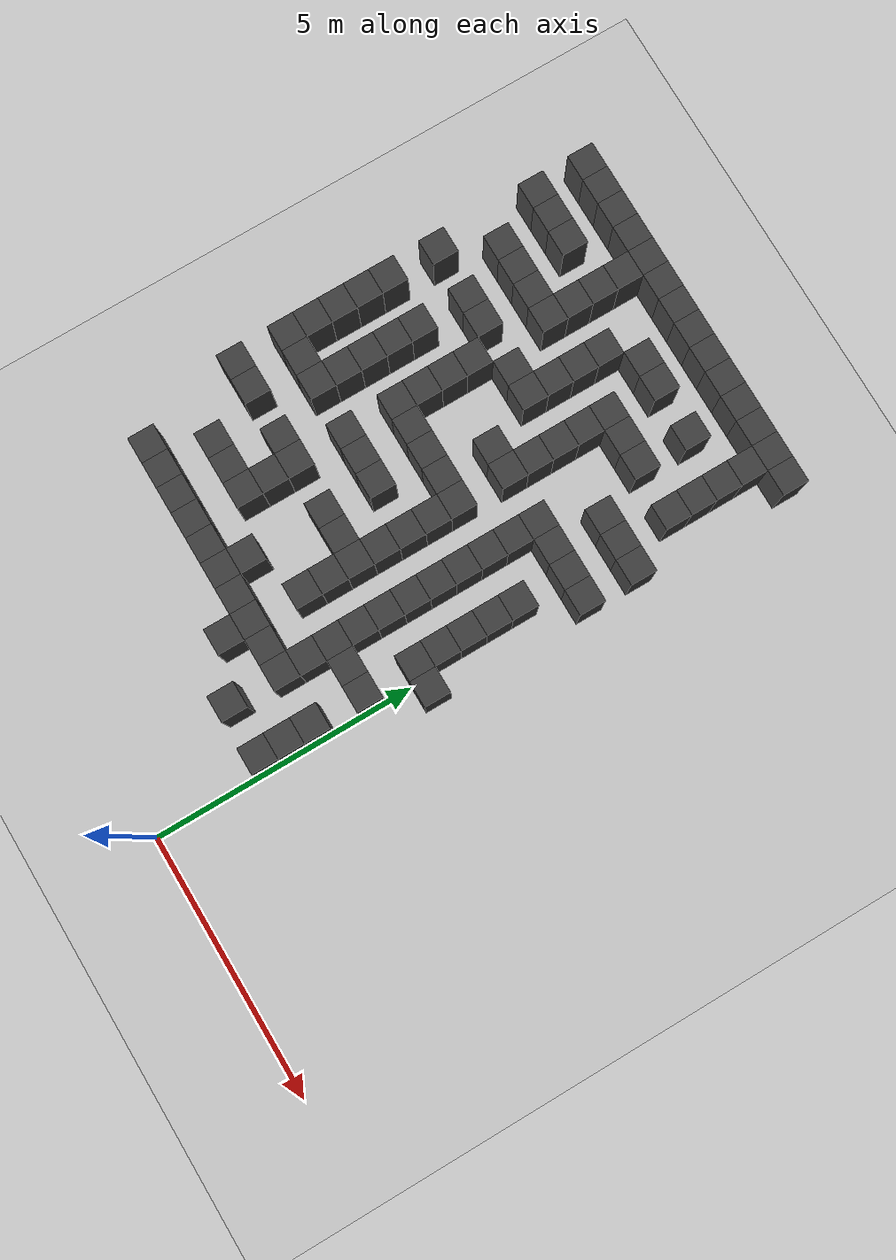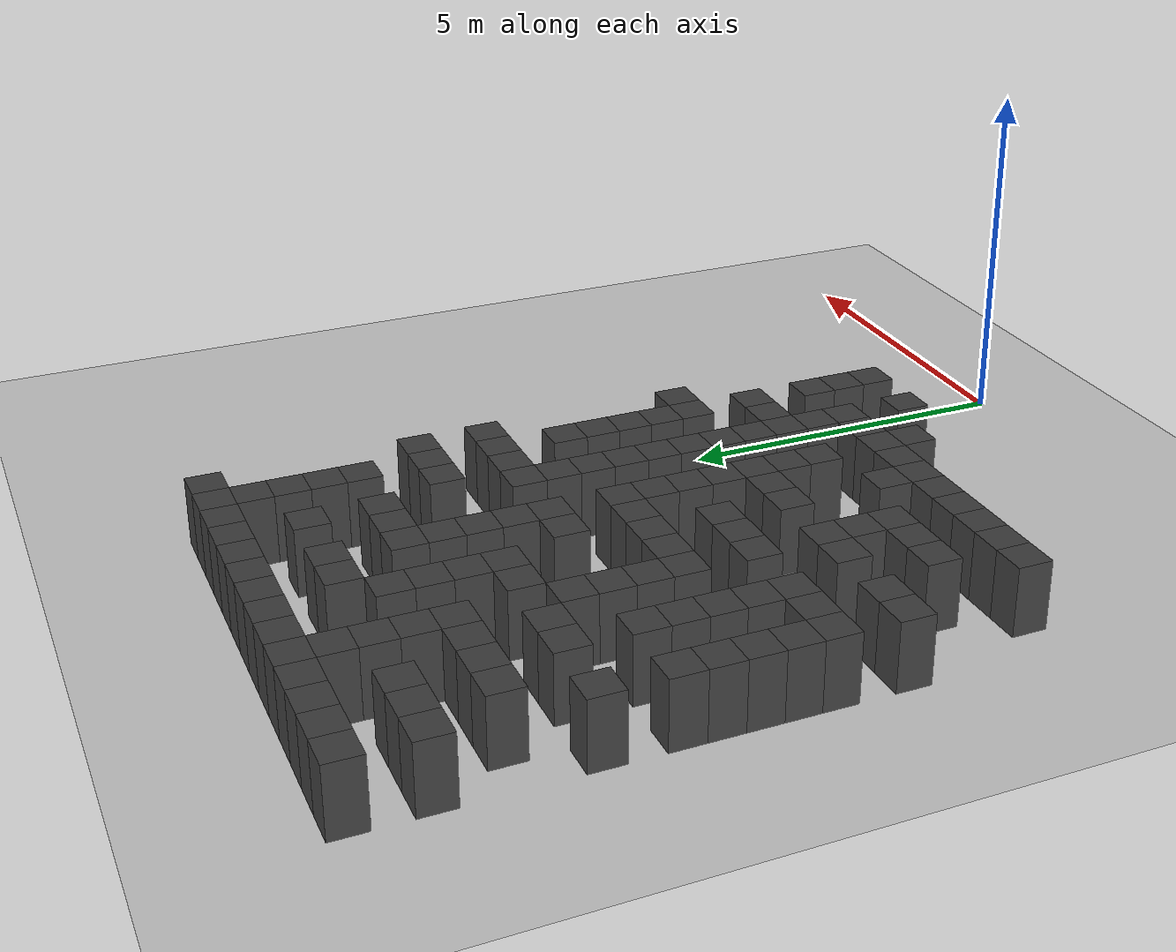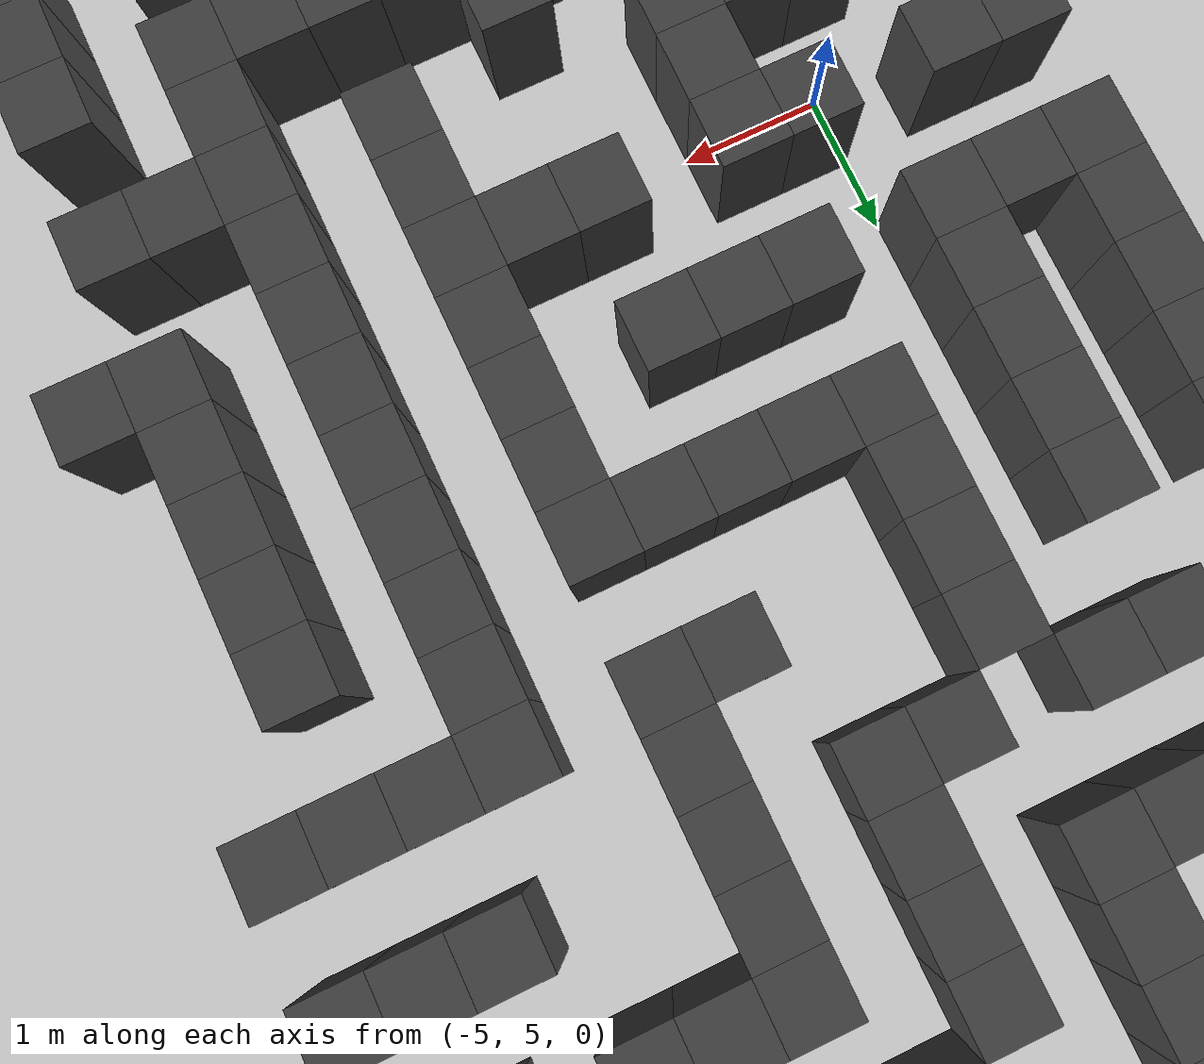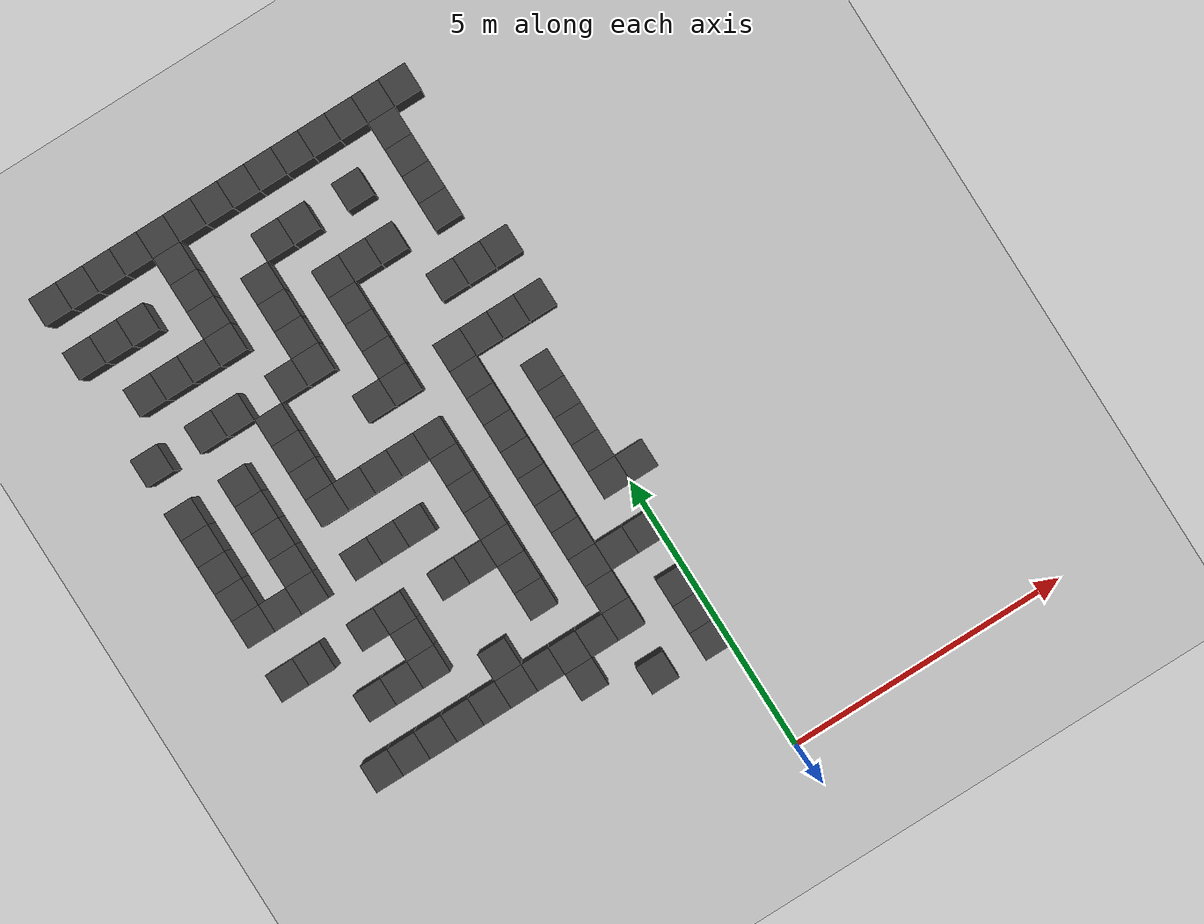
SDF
<sdf version="1.7">
 <world name="map_16783">
  <model name="ground_plane">
   <static>true</static>
   <link name="link">
    <collision name="collision">
     <geometry><plane><normal>0 0 1</normal><size>200 200</size></plane></geometry>
    </collision>
    <visual name="visual">
     <geometry><plane><normal>0 0 1</normal><size>200 200</size></plane></geometry>
     <material><ambient>0.8 0.8 0.8 1</ambient><diffuse>0.8 0.8 0.8 1</diffuse></material>
    </visual>
   </link>
  </model>
  <model name="maze_environment">
   <static>true</static>
   <link name="wall_12">
    <pose>-6.250 12.250 0.500 0 0 0</pose>
    <collision name="col"><geometry><box><size>0.5 0.5 1.0</size></box></geometry></collision>
    <visual name="vis">
     <geometry><box><size>0.5 0.5 1.0</size></box></geometry>
     <material><ambient>0.15 0.15 0.15 1</ambient><diffuse>0.25 0.25 0.25 1</diffuse></material>
    </visual>
   </link>
   <link name="wall_13">
    <pose>-5.750 12.250 0.500 0 0 0</pose>
    <collision name="col"><geometry><box><size>0.5 0.5 1.0</size></box></geometry></collision>
    <visual name="vis">
     <geometry><box><size>0.5 0.5 1.0</size></box></geometry>
     <material><ambient>0.15 0.15 0.15 1</ambient><diffuse>0.25 0.25 0.25 1</diffuse></material>
    </visual>
   </link>
   <link name="wall_14">
    <pose>-5.250 12.250 0.500 0 0 0</pose>
    <collision name="col"><geometry><box><size>0.5 0.5 1.0</size></box></geometry></collision>
    <visual name="vis">
     <geometry><box><size>0.5 0.5 1.0</size></box></geometry>
     <material><ambient>0.15 0.15 0.15 1</ambient><diffuse>0.25 0.25 0.25 1</diffuse></material>
    </visual>
   </link>
   <link name="wall_15">
    <pose>-4.750 12.250 0.500 0 0 0</pose>
    <collision name="col"><geometry><box><size>0.5 0.5 1.0</size></box></geometry></collision>
    <visual name="vis">
     <geometry><box><size>0.5 0.5 1.0</size></box></geometry>
     <material><ambient>0.15 0.15 0.15 1</ambient><diffuse>0.25 0.25 0.25 1</diffuse></material>
    </visual>
   </link>
   <link name="wall_16">
    <pose>-4.250 12.250 0.500 0 0 0</pose>
    <collision name="col"><geometry><box><size>0.5 0.5 1.0</size></box></geometry></collision>
    <visual name="vis">
     <geometry><box><size>0.5 0.5 1.0</size></box></geometry>
     <material><ambient>0.15 0.15 0.15 1</ambient><diffuse>0.25 0.25 0.25 1</diffuse></material>
    </visual>
   </link>
   <link name="wall_17">
    <pose>-3.750 12.250 0.500 0 0 0</pose>
    <collision name="col"><geometry><box><size>0.5 0.5 1.0</size></box></geometry></collision>
    <visual name="vis">
     <geometry><box><size>0.5 0.5 1.0</size></box></geometry>
     <material><ambient>0.15 0.15 0.15 1</ambient><diffuse>0.25 0.25 0.25 1</diffuse></material>
    </visual>
   </link>
   <link name="wall_18">
    <pose>-3.250 12.250 0.500 0 0 0</pose>
    <collision name="col"><geometry><box><size>0.5 0.5 1.0</size></box></geometry></collision>
    <visual name="vis">
     <geometry><box><size>0.5 0.5 1.0</size></box></geometry>
     <material><ambient>0.15 0.15 0.15 1</ambient><diffuse>0.25 0.25 0.25 1</diffuse></material>
    </visual>
   </link>
   <link name="wall_19">
    <pose>-2.750 12.250 0.500 0 0 0</pose>
    <collision name="col"><geometry><box><size>0.5 0.5 1.0</size></box></geometry></collision>
    <visual name="vis">
     <geometry><box><size>0.5 0.5 1.0</size></box></geometry>
     <material><ambient>0.15 0.15 0.15 1</ambient><diffuse>0.25 0.25 0.25 1</diffuse></material>
    </visual>
   </link>
   <link name="wall_20">
    <pose>-2.250 12.250 0.500 0 0 0</pose>
    <collision name="col"><geometry><box><size>0.5 0.5 1.0</size></box></geometry></collision>
    <visual name="vis">
     <geometry><box><size>0.5 0.5 1.0</size></box></geometry>
     <material><ambient>0.15 0.15 0.15 1</ambient><diffuse>0.25 0.25 0.25 1</diffuse></material>
    </visual>
   </link>
   <link name="wall_21">
    <pose>-1.750 12.250 0.500 0 0 0</pose>
    <collision name="col"><geometry><box><size>0.5 0.5 1.0</size></box></geometry></collision>
    <visual name="vis">
     <geometry><box><size>0.5 0.5 1.0</size></box></geometry>
     <material><ambient>0.15 0.15 0.15 1</ambient><diffuse>0.25 0.25 0.25 1</diffuse></material>
    </visual>
   </link>
   <link name="wall_22">
    <pose>-1.250 12.250 0.500 0 0 0</pose>
    <collision name="col"><geometry><box><size>0.5 0.5 1.0</size></box></geometry></collision>
    <visual name="vis">
     <geometry><box><size>0.5 0.5 1.0</size></box></geometry>
     <material><ambient>0.15 0.15 0.15 1</ambient><diffuse>0.25 0.25 0.25 1</diffuse></material>
    </visual>
   </link>
   <link name="wall_23">
    <pose>-0.750 12.250 0.500 0 0 0</pose>
    <collision name="col"><geometry><box><size>0.5 0.5 1.0</size></box></geometry></collision>
    <visual name="vis">
     <geometry><box><size>0.5 0.5 1.0</size></box></geometry>
     <material><ambient>0.15 0.15 0.15 1</ambient><diffuse>0.25 0.25 0.25 1</diffuse></material>
    </visual>
   </link>
   <link name="wall_24">
    <pose>-0.250 12.250 0.500 0 0 0</pose>
    <collision name="col"><geometry><box><size>0.5 0.5 1.0</size></box></geometry></collision>
    <visual name="vis">
     <geometry><box><size>0.5 0.5 1.0</size></box></geometry>
     <material><ambient>0.15 0.15 0.15 1</ambient><diffuse>0.25 0.25 0.25 1</diffuse></material>
    </visual>
   </link>
   <link name="wall_25">
    <pose>0.250 12.250 0.500 0 0 0</pose>
    <collision name="col"><geometry><box><size>0.5 0.5 1.0</size></box></geometry></collision>
    <visual name="vis">
     <geometry><box><size>0.5 0.5 1.0</size></box></geometry>
     <material><ambient>0.15 0.15 0.15 1</ambient><diffuse>0.25 0.25 0.25 1</diffuse></material>
    </visual>
   </link>
   <link name="wall_53">
    <pose>-4.250 11.750 0.500 0 0 0</pose>
    <collision name="col"><geometry><box><size>0.5 0.5 1.0</size></box></geometry></collision>
    <visual name="vis">
     <geometry><box><size>0.5 0.5 1.0</size></box></geometry>
     <material><ambient>0.15 0.15 0.15 1</ambient><diffuse>0.25 0.25 0.25 1</diffuse></material>
    </visual>
   </link>
   <link name="wall_54">
    <pose>-0.250 11.750 0.500 0 0 0</pose>
    <collision name="col"><geometry><box><size>0.5 0.5 1.0</size></box></geometry></collision>
    <visual name="vis">
     <geometry><box><size>0.5 0.5 1.0</size></box></geometry>
     <material><ambient>0.15 0.15 0.15 1</ambient><diffuse>0.25 0.25 0.25 1</diffuse></material>
    </visual>
   </link>
   <link name="wall_68">
    <pose>-6.250 11.250 0.500 0 0 0</pose>
    <collision name="col"><geometry><box><size>0.5 0.5 1.0</size></box></geometry></collision>
    <visual name="vis">
     <geometry><box><size>0.5 0.5 1.0</size></box></geometry>
     <material><ambient>0.15 0.15 0.15 1</ambient><diffuse>0.25 0.25 0.25 1</diffuse></material>
    </visual>
   </link>
   <link name="wall_69">
    <pose>-5.750 11.250 0.500 0 0 0</pose>
    <collision name="col"><geometry><box><size>0.5 0.5 1.0</size></box></geometry></collision>
    <visual name="vis">
     <geometry><box><size>0.5 0.5 1.0</size></box></geometry>
     <material><ambient>0.15 0.15 0.15 1</ambient><diffuse>0.25 0.25 0.25 1</diffuse></material>
    </visual>
   </link>
   <link name="wall_70">
    <pose>-5.250 11.250 0.500 0 0 0</pose>
    <collision name="col"><geometry><box><size>0.5 0.5 1.0</size></box></geometry></collision>
    <visual name="vis">
     <geometry><box><size>0.5 0.5 1.0</size></box></geometry>
     <material><ambient>0.15 0.15 0.15 1</ambient><diffuse>0.25 0.25 0.25 1</diffuse></material>
    </visual>
   </link>
   <link name="wall_71">
    <pose>-4.250 11.250 0.500 0 0 0</pose>
    <collision name="col"><geometry><box><size>0.5 0.5 1.0</size></box></geometry></collision>
    <visual name="vis">
     <geometry><box><size>0.5 0.5 1.0</size></box></geometry>
     <material><ambient>0.15 0.15 0.15 1</ambient><diffuse>0.25 0.25 0.25 1</diffuse></material>
    </visual>
   </link>
   <link name="wall_72">
    <pose>-2.750 11.250 0.500 0 0 0</pose>
    <collision name="col"><geometry><box><size>0.5 0.5 1.0</size></box></geometry></collision>
    <visual name="vis">
     <geometry><box><size>0.5 0.5 1.0</size></box></geometry>
     <material><ambient>0.15 0.15 0.15 1</ambient><diffuse>0.25 0.25 0.25 1</diffuse></material>
    </visual>
   </link>
   <link name="wall_73">
    <pose>-2.250 11.250 0.500 0 0 0</pose>
    <collision name="col"><geometry><box><size>0.5 0.5 1.0</size></box></geometry></collision>
    <visual name="vis">
     <geometry><box><size>0.5 0.5 1.0</size></box></geometry>
     <material><ambient>0.15 0.15 0.15 1</ambient><diffuse>0.25 0.25 0.25 1</diffuse></material>
    </visual>
   </link>
   <link name="wall_74">
    <pose>-1.250 11.250 0.500 0 0 0</pose>
    <collision name="col"><geometry><box><size>0.5 0.5 1.0</size></box></geometry></collision>
    <visual name="vis">
     <geometry><box><size>0.5 0.5 1.0</size></box></geometry>
     <material><ambient>0.15 0.15 0.15 1</ambient><diffuse>0.25 0.25 0.25 1</diffuse></material>
    </visual>
   </link>
   <link name="wall_75">
    <pose>-0.250 11.250 0.500 0 0 0</pose>
    <collision name="col"><geometry><box><size>0.5 0.5 1.0</size></box></geometry></collision>
    <visual name="vis">
     <geometry><box><size>0.5 0.5 1.0</size></box></geometry>
     <material><ambient>0.15 0.15 0.15 1</ambient><diffuse>0.25 0.25 0.25 1</diffuse></material>
    </visual>
   </link>
   <link name="wall_97">
    <pose>-4.250 10.750 0.500 0 0 0</pose>
    <collision name="col"><geometry><box><size>0.5 0.5 1.0</size></box></geometry></collision>
    <visual name="vis">
     <geometry><box><size>0.5 0.5 1.0</size></box></geometry>
     <material><ambient>0.15 0.15 0.15 1</ambient><diffuse>0.25 0.25 0.25 1</diffuse></material>
    </visual>
   </link>
   <link name="wall_98">
    <pose>-3.250 10.750 0.500 0 0 0</pose>
    <collision name="col"><geometry><box><size>0.5 0.5 1.0</size></box></geometry></collision>
    <visual name="vis">
     <geometry><box><size>0.5 0.5 1.0</size></box></geometry>
     <material><ambient>0.15 0.15 0.15 1</ambient><diffuse>0.25 0.25 0.25 1</diffuse></material>
    </visual>
   </link>
   <link name="wall_99">
    <pose>-0.250 10.750 0.500 0 0 0</pose>
    <collision name="col"><geometry><box><size>0.5 0.5 1.0</size></box></geometry></collision>
    <visual name="vis">
     <geometry><box><size>0.5 0.5 1.0</size></box></geometry>
     <material><ambient>0.15 0.15 0.15 1</ambient><diffuse>0.25 0.25 0.25 1</diffuse></material>
    </visual>
   </link>
   <link name="wall_115">
    <pose>-5.750 10.250 0.500 0 0 0</pose>
    <collision name="col"><geometry><box><size>0.5 0.5 1.0</size></box></geometry></collision>
    <visual name="vis">
     <geometry><box><size>0.5 0.5 1.0</size></box></geometry>
     <material><ambient>0.15 0.15 0.15 1</ambient><diffuse>0.25 0.25 0.25 1</diffuse></material>
    </visual>
   </link>
   <link name="wall_116">
    <pose>-5.250 10.250 0.500 0 0 0</pose>
    <collision name="col"><geometry><box><size>0.5 0.5 1.0</size></box></geometry></collision>
    <visual name="vis">
     <geometry><box><size>0.5 0.5 1.0</size></box></geometry>
     <material><ambient>0.15 0.15 0.15 1</ambient><diffuse>0.25 0.25 0.25 1</diffuse></material>
    </visual>
   </link>
   <link name="wall_117">
    <pose>-4.750 10.250 0.500 0 0 0</pose>
    <collision name="col"><geometry><box><size>0.5 0.5 1.0</size></box></geometry></collision>
    <visual name="vis">
     <geometry><box><size>0.5 0.5 1.0</size></box></geometry>
     <material><ambient>0.15 0.15 0.15 1</ambient><diffuse>0.25 0.25 0.25 1</diffuse></material>
    </visual>
   </link>
   <link name="wall_118">
    <pose>-4.250 10.250 0.500 0 0 0</pose>
    <collision name="col"><geometry><box><size>0.5 0.5 1.0</size></box></geometry></collision>
    <visual name="vis">
     <geometry><box><size>0.5 0.5 1.0</size></box></geometry>
     <material><ambient>0.15 0.15 0.15 1</ambient><diffuse>0.25 0.25 0.25 1</diffuse></material>
    </visual>
   </link>
   <link name="wall_119">
    <pose>-3.250 10.250 0.500 0 0 0</pose>
    <collision name="col"><geometry><box><size>0.5 0.5 1.0</size></box></geometry></collision>
    <visual name="vis">
     <geometry><box><size>0.5 0.5 1.0</size></box></geometry>
     <material><ambient>0.15 0.15 0.15 1</ambient><diffuse>0.25 0.25 0.25 1</diffuse></material>
    </visual>
   </link>
   <link name="wall_120">
    <pose>-2.250 10.250 0.500 0 0 0</pose>
    <collision name="col"><geometry><box><size>0.5 0.5 1.0</size></box></geometry></collision>
    <visual name="vis">
     <geometry><box><size>0.5 0.5 1.0</size></box></geometry>
     <material><ambient>0.15 0.15 0.15 1</ambient><diffuse>0.25 0.25 0.25 1</diffuse></material>
    </visual>
   </link>
   <link name="wall_121">
    <pose>-1.750 10.250 0.500 0 0 0</pose>
    <collision name="col"><geometry><box><size>0.5 0.5 1.0</size></box></geometry></collision>
    <visual name="vis">
     <geometry><box><size>0.5 0.5 1.0</size></box></geometry>
     <material><ambient>0.15 0.15 0.15 1</ambient><diffuse>0.25 0.25 0.25 1</diffuse></material>
    </visual>
   </link>
   <link name="wall_122">
    <pose>-1.250 10.250 0.500 0 0 0</pose>
    <collision name="col"><geometry><box><size>0.5 0.5 1.0</size></box></geometry></collision>
    <visual name="vis">
     <geometry><box><size>0.5 0.5 1.0</size></box></geometry>
     <material><ambient>0.15 0.15 0.15 1</ambient><diffuse>0.25 0.25 0.25 1</diffuse></material>
    </visual>
   </link>
   <link name="wall_123">
    <pose>-0.250 10.250 0.500 0 0 0</pose>
    <collision name="col"><geometry><box><size>0.5 0.5 1.0</size></box></geometry></collision>
    <visual name="vis">
     <geometry><box><size>0.5 0.5 1.0</size></box></geometry>
     <material><ambient>0.15 0.15 0.15 1</ambient><diffuse>0.25 0.25 0.25 1</diffuse></material>
    </visual>
   </link>
   <link name="wall_145">
    <pose>-3.250 9.750 0.500 0 0 0</pose>
    <collision name="col"><geometry><box><size>0.5 0.5 1.0</size></box></geometry></collision>
    <visual name="vis">
     <geometry><box><size>0.5 0.5 1.0</size></box></geometry>
     <material><ambient>0.15 0.15 0.15 1</ambient><diffuse>0.25 0.25 0.25 1</diffuse></material>
    </visual>
   </link>
   <link name="wall_146">
    <pose>-2.250 9.750 0.500 0 0 0</pose>
    <collision name="col"><geometry><box><size>0.5 0.5 1.0</size></box></geometry></collision>
    <visual name="vis">
     <geometry><box><size>0.5 0.5 1.0</size></box></geometry>
     <material><ambient>0.15 0.15 0.15 1</ambient><diffuse>0.25 0.25 0.25 1</diffuse></material>
    </visual>
   </link>
   <link name="wall_161">
    <pose>-6.250 9.250 0.500 0 0 0</pose>
    <collision name="col"><geometry><box><size>0.5 0.5 1.0</size></box></geometry></collision>
    <visual name="vis">
     <geometry><box><size>0.5 0.5 1.0</size></box></geometry>
     <material><ambient>0.15 0.15 0.15 1</ambient><diffuse>0.25 0.25 0.25 1</diffuse></material>
    </visual>
   </link>
   <link name="wall_162">
    <pose>-5.250 9.250 0.500 0 0 0</pose>
    <collision name="col"><geometry><box><size>0.5 0.5 1.0</size></box></geometry></collision>
    <visual name="vis">
     <geometry><box><size>0.5 0.5 1.0</size></box></geometry>
     <material><ambient>0.15 0.15 0.15 1</ambient><diffuse>0.25 0.25 0.25 1</diffuse></material>
    </visual>
   </link>
   <link name="wall_163">
    <pose>-4.750 9.250 0.500 0 0 0</pose>
    <collision name="col"><geometry><box><size>0.5 0.5 1.0</size></box></geometry></collision>
    <visual name="vis">
     <geometry><box><size>0.5 0.5 1.0</size></box></geometry>
     <material><ambient>0.15 0.15 0.15 1</ambient><diffuse>0.25 0.25 0.25 1</diffuse></material>
    </visual>
   </link>
   <link name="wall_164">
    <pose>-3.750 9.250 0.500 0 0 0</pose>
    <collision name="col"><geometry><box><size>0.5 0.5 1.0</size></box></geometry></collision>
    <visual name="vis">
     <geometry><box><size>0.5 0.5 1.0</size></box></geometry>
     <material><ambient>0.15 0.15 0.15 1</ambient><diffuse>0.25 0.25 0.25 1</diffuse></material>
    </visual>
   </link>
   <link name="wall_165">
    <pose>-3.250 9.250 0.500 0 0 0</pose>
    <collision name="col"><geometry><box><size>0.5 0.5 1.0</size></box></geometry></collision>
    <visual name="vis">
     <geometry><box><size>0.5 0.5 1.0</size></box></geometry>
     <material><ambient>0.15 0.15 0.15 1</ambient><diffuse>0.25 0.25 0.25 1</diffuse></material>
    </visual>
   </link>
   <link name="wall_166">
    <pose>-2.250 9.250 0.500 0 0 0</pose>
    <collision name="col"><geometry><box><size>0.5 0.5 1.0</size></box></geometry></collision>
    <visual name="vis">
     <geometry><box><size>0.5 0.5 1.0</size></box></geometry>
     <material><ambient>0.15 0.15 0.15 1</ambient><diffuse>0.25 0.25 0.25 1</diffuse></material>
    </visual>
   </link>
   <link name="wall_167">
    <pose>-0.750 9.250 0.500 0 0 0</pose>
    <collision name="col"><geometry><box><size>0.5 0.5 1.0</size></box></geometry></collision>
    <visual name="vis">
     <geometry><box><size>0.5 0.5 1.0</size></box></geometry>
     <material><ambient>0.15 0.15 0.15 1</ambient><diffuse>0.25 0.25 0.25 1</diffuse></material>
    </visual>
   </link>
   <link name="wall_168">
    <pose>-0.250 9.250 0.500 0 0 0</pose>
    <collision name="col"><geometry><box><size>0.5 0.5 1.0</size></box></geometry></collision>
    <visual name="vis">
     <geometry><box><size>0.5 0.5 1.0</size></box></geometry>
     <material><ambient>0.15 0.15 0.15 1</ambient><diffuse>0.25 0.25 0.25 1</diffuse></material>
    </visual>
   </link>
   <link name="wall_169">
    <pose>0.250 9.250 0.500 0 0 0</pose>
    <collision name="col"><geometry><box><size>0.5 0.5 1.0</size></box></geometry></collision>
    <visual name="vis">
     <geometry><box><size>0.5 0.5 1.0</size></box></geometry>
     <material><ambient>0.15 0.15 0.15 1</ambient><diffuse>0.25 0.25 0.25 1</diffuse></material>
    </visual>
   </link>
   <link name="wall_193">
    <pose>-4.250 8.750 0.500 0 0 0</pose>
    <collision name="col"><geometry><box><size>0.5 0.5 1.0</size></box></geometry></collision>
    <visual name="vis">
     <geometry><box><size>0.5 0.5 1.0</size></box></geometry>
     <material><ambient>0.15 0.15 0.15 1</ambient><diffuse>0.25 0.25 0.25 1</diffuse></material>
    </visual>
   </link>
   <link name="wall_194">
    <pose>-2.250 8.750 0.500 0 0 0</pose>
    <collision name="col"><geometry><box><size>0.5 0.5 1.0</size></box></geometry></collision>
    <visual name="vis">
     <geometry><box><size>0.5 0.5 1.0</size></box></geometry>
     <material><ambient>0.15 0.15 0.15 1</ambient><diffuse>0.25 0.25 0.25 1</diffuse></material>
    </visual>
   </link>
   <link name="wall_210">
    <pose>-6.250 8.250 0.500 0 0 0</pose>
    <collision name="col"><geometry><box><size>0.5 0.5 1.0</size></box></geometry></collision>
    <visual name="vis">
     <geometry><box><size>0.5 0.5 1.0</size></box></geometry>
     <material><ambient>0.15 0.15 0.15 1</ambient><diffuse>0.25 0.25 0.25 1</diffuse></material>
    </visual>
   </link>
   <link name="wall_211">
    <pose>-5.250 8.250 0.500 0 0 0</pose>
    <collision name="col"><geometry><box><size>0.5 0.5 1.0</size></box></geometry></collision>
    <visual name="vis">
     <geometry><box><size>0.5 0.5 1.0</size></box></geometry>
     <material><ambient>0.15 0.15 0.15 1</ambient><diffuse>0.25 0.25 0.25 1</diffuse></material>
    </visual>
   </link>
   <link name="wall_212">
    <pose>-4.250 8.250 0.500 0 0 0</pose>
    <collision name="col"><geometry><box><size>0.5 0.5 1.0</size></box></geometry></collision>
    <visual name="vis">
     <geometry><box><size>0.5 0.5 1.0</size></box></geometry>
     <material><ambient>0.15 0.15 0.15 1</ambient><diffuse>0.25 0.25 0.25 1</diffuse></material>
    </visual>
   </link>
   <link name="wall_213">
    <pose>-2.750 8.250 0.500 0 0 0</pose>
    <collision name="col"><geometry><box><size>0.5 0.5 1.0</size></box></geometry></collision>
    <visual name="vis">
     <geometry><box><size>0.5 0.5 1.0</size></box></geometry>
     <material><ambient>0.15 0.15 0.15 1</ambient><diffuse>0.25 0.25 0.25 1</diffuse></material>
    </visual>
   </link>
   <link name="wall_214">
    <pose>-2.250 8.250 0.500 0 0 0</pose>
    <collision name="col"><geometry><box><size>0.5 0.5 1.0</size></box></geometry></collision>
    <visual name="vis">
     <geometry><box><size>0.5 0.5 1.0</size></box></geometry>
     <material><ambient>0.15 0.15 0.15 1</ambient><diffuse>0.25 0.25 0.25 1</diffuse></material>
    </visual>
   </link>
   <link name="wall_215">
    <pose>-1.250 8.250 0.500 0 0 0</pose>
    <collision name="col"><geometry><box><size>0.5 0.5 1.0</size></box></geometry></collision>
    <visual name="vis">
     <geometry><box><size>0.5 0.5 1.0</size></box></geometry>
     <material><ambient>0.15 0.15 0.15 1</ambient><diffuse>0.25 0.25 0.25 1</diffuse></material>
    </visual>
   </link>
   <link name="wall_216">
    <pose>-0.750 8.250 0.500 0 0 0</pose>
    <collision name="col"><geometry><box><size>0.5 0.5 1.0</size></box></geometry></collision>
    <visual name="vis">
     <geometry><box><size>0.5 0.5 1.0</size></box></geometry>
     <material><ambient>0.15 0.15 0.15 1</ambient><diffuse>0.25 0.25 0.25 1</diffuse></material>
    </visual>
   </link>
   <link name="wall_217">
    <pose>-0.250 8.250 0.500 0 0 0</pose>
    <collision name="col"><geometry><box><size>0.5 0.5 1.0</size></box></geometry></collision>
    <visual name="vis">
     <geometry><box><size>0.5 0.5 1.0</size></box></geometry>
     <material><ambient>0.15 0.15 0.15 1</ambient><diffuse>0.25 0.25 0.25 1</diffuse></material>
    </visual>
   </link>
   <link name="wall_218">
    <pose>0.250 8.250 0.500 0 0 0</pose>
    <collision name="col"><geometry><box><size>0.5 0.5 1.0</size></box></geometry></collision>
    <visual name="vis">
     <geometry><box><size>0.5 0.5 1.0</size></box></geometry>
     <material><ambient>0.15 0.15 0.15 1</ambient><diffuse>0.25 0.25 0.25 1</diffuse></material>
    </visual>
   </link>
   <link name="wall_239">
    <pose>-6.250 7.750 0.500 0 0 0</pose>
    <collision name="col"><geometry><box><size>0.5 0.5 1.0</size></box></geometry></collision>
    <visual name="vis">
     <geometry><box><size>0.5 0.5 1.0</size></box></geometry>
     <material><ambient>0.15 0.15 0.15 1</ambient><diffuse>0.25 0.25 0.25 1</diffuse></material>
    </visual>
   </link>
   <link name="wall_240">
    <pose>-5.250 7.750 0.500 0 0 0</pose>
    <collision name="col"><geometry><box><size>0.5 0.5 1.0</size></box></geometry></collision>
    <visual name="vis">
     <geometry><box><size>0.5 0.5 1.0</size></box></geometry>
     <material><ambient>0.15 0.15 0.15 1</ambient><diffuse>0.25 0.25 0.25 1</diffuse></material>
    </visual>
   </link>
   <link name="wall_241">
    <pose>-4.250 7.750 0.500 0 0 0</pose>
    <collision name="col"><geometry><box><size>0.5 0.5 1.0</size></box></geometry></collision>
    <visual name="vis">
     <geometry><box><size>0.5 0.5 1.0</size></box></geometry>
     <material><ambient>0.15 0.15 0.15 1</ambient><diffuse>0.25 0.25 0.25 1</diffuse></material>
    </visual>
   </link>
   <link name="wall_242">
    <pose>-1.250 7.750 0.500 0 0 0</pose>
    <collision name="col"><geometry><box><size>0.5 0.5 1.0</size></box></geometry></collision>
    <visual name="vis">
     <geometry><box><size>0.5 0.5 1.0</size></box></geometry>
     <material><ambient>0.15 0.15 0.15 1</ambient><diffuse>0.25 0.25 0.25 1</diffuse></material>
    </visual>
   </link>
   <link name="wall_257">
    <pose>-6.250 7.250 0.500 0 0 0</pose>
    <collision name="col"><geometry><box><size>0.5 0.5 1.0</size></box></geometry></collision>
    <visual name="vis">
     <geometry><box><size>0.5 0.5 1.0</size></box></geometry>
     <material><ambient>0.15 0.15 0.15 1</ambient><diffuse>0.25 0.25 0.25 1</diffuse></material>
    </visual>
   </link>
   <link name="wall_258">
    <pose>-5.250 7.250 0.500 0 0 0</pose>
    <collision name="col"><geometry><box><size>0.5 0.5 1.0</size></box></geometry></collision>
    <visual name="vis">
     <geometry><box><size>0.5 0.5 1.0</size></box></geometry>
     <material><ambient>0.15 0.15 0.15 1</ambient><diffuse>0.25 0.25 0.25 1</diffuse></material>
    </visual>
   </link>
   <link name="wall_259">
    <pose>-4.250 7.250 0.500 0 0 0</pose>
    <collision name="col"><geometry><box><size>0.5 0.5 1.0</size></box></geometry></collision>
    <visual name="vis">
     <geometry><box><size>0.5 0.5 1.0</size></box></geometry>
     <material><ambient>0.15 0.15 0.15 1</ambient><diffuse>0.25 0.25 0.25 1</diffuse></material>
    </visual>
   </link>
   <link name="wall_260">
    <pose>-3.750 7.250 0.500 0 0 0</pose>
    <collision name="col"><geometry><box><size>0.5 0.5 1.0</size></box></geometry></collision>
    <visual name="vis">
     <geometry><box><size>0.5 0.5 1.0</size></box></geometry>
     <material><ambient>0.15 0.15 0.15 1</ambient><diffuse>0.25 0.25 0.25 1</diffuse></material>
    </visual>
   </link>
   <link name="wall_261">
    <pose>-3.250 7.250 0.500 0 0 0</pose>
    <collision name="col"><geometry><box><size>0.5 0.5 1.0</size></box></geometry></collision>
    <visual name="vis">
     <geometry><box><size>0.5 0.5 1.0</size></box></geometry>
     <material><ambient>0.15 0.15 0.15 1</ambient><diffuse>0.25 0.25 0.25 1</diffuse></material>
    </visual>
   </link>
   <link name="wall_262">
    <pose>-2.750 7.250 0.500 0 0 0</pose>
    <collision name="col"><geometry><box><size>0.5 0.5 1.0</size></box></geometry></collision>
    <visual name="vis">
     <geometry><box><size>0.5 0.5 1.0</size></box></geometry>
     <material><ambient>0.15 0.15 0.15 1</ambient><diffuse>0.25 0.25 0.25 1</diffuse></material>
    </visual>
   </link>
   <link name="wall_263">
    <pose>-2.250 7.250 0.500 0 0 0</pose>
    <collision name="col"><geometry><box><size>0.5 0.5 1.0</size></box></geometry></collision>
    <visual name="vis">
     <geometry><box><size>0.5 0.5 1.0</size></box></geometry>
     <material><ambient>0.15 0.15 0.15 1</ambient><diffuse>0.25 0.25 0.25 1</diffuse></material>
    </visual>
   </link>
   <link name="wall_264">
    <pose>-1.250 7.250 0.500 0 0 0</pose>
    <collision name="col"><geometry><box><size>0.5 0.5 1.0</size></box></geometry></collision>
    <visual name="vis">
     <geometry><box><size>0.5 0.5 1.0</size></box></geometry>
     <material><ambient>0.15 0.15 0.15 1</ambient><diffuse>0.25 0.25 0.25 1</diffuse></material>
    </visual>
   </link>
   <link name="wall_265">
    <pose>-0.250 7.250 0.500 0 0 0</pose>
    <collision name="col"><geometry><box><size>0.5 0.5 1.0</size></box></geometry></collision>
    <visual name="vis">
     <geometry><box><size>0.5 0.5 1.0</size></box></geometry>
     <material><ambient>0.15 0.15 0.15 1</ambient><diffuse>0.25 0.25 0.25 1</diffuse></material>
    </visual>
   </link>
   <link name="wall_285">
    <pose>-6.250 6.750 0.500 0 0 0</pose>
    <collision name="col"><geometry><box><size>0.5 0.5 1.0</size></box></geometry></collision>
    <visual name="vis">
     <geometry><box><size>0.5 0.5 1.0</size></box></geometry>
     <material><ambient>0.15 0.15 0.15 1</ambient><diffuse>0.25 0.25 0.25 1</diffuse></material>
    </visual>
   </link>
   <link name="wall_286">
    <pose>-5.250 6.750 0.500 0 0 0</pose>
    <collision name="col"><geometry><box><size>0.5 0.5 1.0</size></box></geometry></collision>
    <visual name="vis">
     <geometry><box><size>0.5 0.5 1.0</size></box></geometry>
     <material><ambient>0.15 0.15 0.15 1</ambient><diffuse>0.25 0.25 0.25 1</diffuse></material>
    </visual>
   </link>
   <link name="wall_287">
    <pose>-2.250 6.750 0.500 0 0 0</pose>
    <collision name="col"><geometry><box><size>0.5 0.5 1.0</size></box></geometry></collision>
    <visual name="vis">
     <geometry><box><size>0.5 0.5 1.0</size></box></geometry>
     <material><ambient>0.15 0.15 0.15 1</ambient><diffuse>0.25 0.25 0.25 1</diffuse></material>
    </visual>
   </link>
   <link name="wall_288">
    <pose>-1.250 6.750 0.500 0 0 0</pose>
    <collision name="col"><geometry><box><size>0.5 0.5 1.0</size></box></geometry></collision>
    <visual name="vis">
     <geometry><box><size>0.5 0.5 1.0</size></box></geometry>
     <material><ambient>0.15 0.15 0.15 1</ambient><diffuse>0.25 0.25 0.25 1</diffuse></material>
    </visual>
   </link>
   <link name="wall_289">
    <pose>-0.250 6.750 0.500 0 0 0</pose>
    <collision name="col"><geometry><box><size>0.5 0.5 1.0</size></box></geometry></collision>
    <visual name="vis">
     <geometry><box><size>0.5 0.5 1.0</size></box></geometry>
     <material><ambient>0.15 0.15 0.15 1</ambient><diffuse>0.25 0.25 0.25 1</diffuse></material>
    </visual>
   </link>
   <link name="wall_304">
    <pose>-6.250 6.250 0.500 0 0 0</pose>
    <collision name="col"><geometry><box><size>0.5 0.5 1.0</size></box></geometry></collision>
    <visual name="vis">
     <geometry><box><size>0.5 0.5 1.0</size></box></geometry>
     <material><ambient>0.15 0.15 0.15 1</ambient><diffuse>0.25 0.25 0.25 1</diffuse></material>
    </visual>
   </link>
   <link name="wall_305">
    <pose>-5.750 6.250 0.500 0 0 0</pose>
    <collision name="col"><geometry><box><size>0.5 0.5 1.0</size></box></geometry></collision>
    <visual name="vis">
     <geometry><box><size>0.5 0.5 1.0</size></box></geometry>
     <material><ambient>0.15 0.15 0.15 1</ambient><diffuse>0.25 0.25 0.25 1</diffuse></material>
    </visual>
   </link>
   <link name="wall_306">
    <pose>-5.250 6.250 0.500 0 0 0</pose>
    <collision name="col"><geometry><box><size>0.5 0.5 1.0</size></box></geometry></collision>
    <visual name="vis">
     <geometry><box><size>0.5 0.5 1.0</size></box></geometry>
     <material><ambient>0.15 0.15 0.15 1</ambient><diffuse>0.25 0.25 0.25 1</diffuse></material>
    </visual>
   </link>
   <link name="wall_307">
    <pose>-4.250 6.250 0.500 0 0 0</pose>
    <collision name="col"><geometry><box><size>0.5 0.5 1.0</size></box></geometry></collision>
    <visual name="vis">
     <geometry><box><size>0.5 0.5 1.0</size></box></geometry>
     <material><ambient>0.15 0.15 0.15 1</ambient><diffuse>0.25 0.25 0.25 1</diffuse></material>
    </visual>
   </link>
   <link name="wall_308">
    <pose>-3.750 6.250 0.500 0 0 0</pose>
    <collision name="col"><geometry><box><size>0.5 0.5 1.0</size></box></geometry></collision>
    <visual name="vis">
     <geometry><box><size>0.5 0.5 1.0</size></box></geometry>
     <material><ambient>0.15 0.15 0.15 1</ambient><diffuse>0.25 0.25 0.25 1</diffuse></material>
    </visual>
   </link>
   <link name="wall_309">
    <pose>-3.250 6.250 0.500 0 0 0</pose>
    <collision name="col"><geometry><box><size>0.5 0.5 1.0</size></box></geometry></collision>
    <visual name="vis">
     <geometry><box><size>0.5 0.5 1.0</size></box></geometry>
     <material><ambient>0.15 0.15 0.15 1</ambient><diffuse>0.25 0.25 0.25 1</diffuse></material>
    </visual>
   </link>
   <link name="wall_310">
    <pose>-2.250 6.250 0.500 0 0 0</pose>
    <collision name="col"><geometry><box><size>0.5 0.5 1.0</size></box></geometry></collision>
    <visual name="vis">
     <geometry><box><size>0.5 0.5 1.0</size></box></geometry>
     <material><ambient>0.15 0.15 0.15 1</ambient><diffuse>0.25 0.25 0.25 1</diffuse></material>
    </visual>
   </link>
   <link name="wall_311">
    <pose>-1.250 6.250 0.500 0 0 0</pose>
    <collision name="col"><geometry><box><size>0.5 0.5 1.0</size></box></geometry></collision>
    <visual name="vis">
     <geometry><box><size>0.5 0.5 1.0</size></box></geometry>
     <material><ambient>0.15 0.15 0.15 1</ambient><diffuse>0.25 0.25 0.25 1</diffuse></material>
    </visual>
   </link>
   <link name="wall_312">
    <pose>-0.250 6.250 0.500 0 0 0</pose>
    <collision name="col"><geometry><box><size>0.5 0.5 1.0</size></box></geometry></collision>
    <visual name="vis">
     <geometry><box><size>0.5 0.5 1.0</size></box></geometry>
     <material><ambient>0.15 0.15 0.15 1</ambient><diffuse>0.25 0.25 0.25 1</diffuse></material>
    </visual>
   </link>
   <link name="wall_335">
    <pose>-2.250 5.750 0.500 0 0 0</pose>
    <collision name="col"><geometry><box><size>0.5 0.5 1.0</size></box></geometry></collision>
    <visual name="vis">
     <geometry><box><size>0.5 0.5 1.0</size></box></geometry>
     <material><ambient>0.15 0.15 0.15 1</ambient><diffuse>0.25 0.25 0.25 1</diffuse></material>
    </visual>
   </link>
   <link name="wall_336">
    <pose>-1.250 5.750 0.500 0 0 0</pose>
    <collision name="col"><geometry><box><size>0.5 0.5 1.0</size></box></geometry></collision>
    <visual name="vis">
     <geometry><box><size>0.5 0.5 1.0</size></box></geometry>
     <material><ambient>0.15 0.15 0.15 1</ambient><diffuse>0.25 0.25 0.25 1</diffuse></material>
    </visual>
   </link>
   <link name="wall_337">
    <pose>-0.250 5.750 0.500 0 0 0</pose>
    <collision name="col"><geometry><box><size>0.5 0.5 1.0</size></box></geometry></collision>
    <visual name="vis">
     <geometry><box><size>0.5 0.5 1.0</size></box></geometry>
     <material><ambient>0.15 0.15 0.15 1</ambient><diffuse>0.25 0.25 0.25 1</diffuse></material>
    </visual>
   </link>
   <link name="wall_353">
    <pose>-6.250 5.250 0.500 0 0 0</pose>
    <collision name="col"><geometry><box><size>0.5 0.5 1.0</size></box></geometry></collision>
    <visual name="vis">
     <geometry><box><size>0.5 0.5 1.0</size></box></geometry>
     <material><ambient>0.15 0.15 0.15 1</ambient><diffuse>0.25 0.25 0.25 1</diffuse></material>
    </visual>
   </link>
   <link name="wall_354">
    <pose>-5.750 5.250 0.500 0 0 0</pose>
    <collision name="col"><geometry><box><size>0.5 0.5 1.0</size></box></geometry></collision>
    <visual name="vis">
     <geometry><box><size>0.5 0.5 1.0</size></box></geometry>
     <material><ambient>0.15 0.15 0.15 1</ambient><diffuse>0.25 0.25 0.25 1</diffuse></material>
    </visual>
   </link>
   <link name="wall_355">
    <pose>-4.750 5.250 0.500 0 0 0</pose>
    <collision name="col"><geometry><box><size>0.5 0.5 1.0</size></box></geometry></collision>
    <visual name="vis">
     <geometry><box><size>0.5 0.5 1.0</size></box></geometry>
     <material><ambient>0.15 0.15 0.15 1</ambient><diffuse>0.25 0.25 0.25 1</diffuse></material>
    </visual>
   </link>
   <link name="wall_356">
    <pose>-4.250 5.250 0.500 0 0 0</pose>
    <collision name="col"><geometry><box><size>0.5 0.5 1.0</size></box></geometry></collision>
    <visual name="vis">
     <geometry><box><size>0.5 0.5 1.0</size></box></geometry>
     <material><ambient>0.15 0.15 0.15 1</ambient><diffuse>0.25 0.25 0.25 1</diffuse></material>
    </visual>
   </link>
   <link name="wall_357">
    <pose>-3.250 5.250 0.500 0 0 0</pose>
    <collision name="col"><geometry><box><size>0.5 0.5 1.0</size></box></geometry></collision>
    <visual name="vis">
     <geometry><box><size>0.5 0.5 1.0</size></box></geometry>
     <material><ambient>0.15 0.15 0.15 1</ambient><diffuse>0.25 0.25 0.25 1</diffuse></material>
    </visual>
   </link>
   <link name="wall_358">
    <pose>-2.750 5.250 0.500 0 0 0</pose>
    <collision name="col"><geometry><box><size>0.5 0.5 1.0</size></box></geometry></collision>
    <visual name="vis">
     <geometry><box><size>0.5 0.5 1.0</size></box></geometry>
     <material><ambient>0.15 0.15 0.15 1</ambient><diffuse>0.25 0.25 0.25 1</diffuse></material>
    </visual>
   </link>
   <link name="wall_359">
    <pose>-2.250 5.250 0.500 0 0 0</pose>
    <collision name="col"><geometry><box><size>0.5 0.5 1.0</size></box></geometry></collision>
    <visual name="vis">
     <geometry><box><size>0.5 0.5 1.0</size></box></geometry>
     <material><ambient>0.15 0.15 0.15 1</ambient><diffuse>0.25 0.25 0.25 1</diffuse></material>
    </visual>
   </link>
   <link name="wall_360">
    <pose>-1.250 5.250 0.500 0 0 0</pose>
    <collision name="col"><geometry><box><size>0.5 0.5 1.0</size></box></geometry></collision>
    <visual name="vis">
     <geometry><box><size>0.5 0.5 1.0</size></box></geometry>
     <material><ambient>0.15 0.15 0.15 1</ambient><diffuse>0.25 0.25 0.25 1</diffuse></material>
    </visual>
   </link>
   <link name="wall_361">
    <pose>-0.250 5.250 0.500 0 0 0</pose>
    <collision name="col"><geometry><box><size>0.5 0.5 1.0</size></box></geometry></collision>
    <visual name="vis">
     <geometry><box><size>0.5 0.5 1.0</size></box></geometry>
     <material><ambient>0.15 0.15 0.15 1</ambient><diffuse>0.25 0.25 0.25 1</diffuse></material>
    </visual>
   </link>
   <link name="wall_362">
    <pose>0.250 5.250 0.500 0 0 0</pose>
    <collision name="col"><geometry><box><size>0.5 0.5 1.0</size></box></geometry></collision>
    <visual name="vis">
     <geometry><box><size>0.5 0.5 1.0</size></box></geometry>
     <material><ambient>0.15 0.15 0.15 1</ambient><diffuse>0.25 0.25 0.25 1</diffuse></material>
    </visual>
   </link>
   <link name="wall_385">
    <pose>-4.250 4.750 0.500 0 0 0</pose>
    <collision name="col"><geometry><box><size>0.5 0.5 1.0</size></box></geometry></collision>
    <visual name="vis">
     <geometry><box><size>0.5 0.5 1.0</size></box></geometry>
     <material><ambient>0.15 0.15 0.15 1</ambient><diffuse>0.25 0.25 0.25 1</diffuse></material>
    </visual>
   </link>
   <link name="wall_386">
    <pose>-2.250 4.750 0.500 0 0 0</pose>
    <collision name="col"><geometry><box><size>0.5 0.5 1.0</size></box></geometry></collision>
    <visual name="vis">
     <geometry><box><size>0.5 0.5 1.0</size></box></geometry>
     <material><ambient>0.15 0.15 0.15 1</ambient><diffuse>0.25 0.25 0.25 1</diffuse></material>
    </visual>
   </link>
   <link name="wall_387">
    <pose>-1.250 4.750 0.500 0 0 0</pose>
    <collision name="col"><geometry><box><size>0.5 0.5 1.0</size></box></geometry></collision>
    <visual name="vis">
     <geometry><box><size>0.5 0.5 1.0</size></box></geometry>
     <material><ambient>0.15 0.15 0.15 1</ambient><diffuse>0.25 0.25 0.25 1</diffuse></material>
    </visual>
   </link>
   <link name="wall_403">
    <pose>-5.250 4.250 0.500 0 0 0</pose>
    <collision name="col"><geometry><box><size>0.5 0.5 1.0</size></box></geometry></collision>
    <visual name="vis">
     <geometry><box><size>0.5 0.5 1.0</size></box></geometry>
     <material><ambient>0.15 0.15 0.15 1</ambient><diffuse>0.25 0.25 0.25 1</diffuse></material>
    </visual>
   </link>
   <link name="wall_404">
    <pose>-4.750 4.250 0.500 0 0 0</pose>
    <collision name="col"><geometry><box><size>0.5 0.5 1.0</size></box></geometry></collision>
    <visual name="vis">
     <geometry><box><size>0.5 0.5 1.0</size></box></geometry>
     <material><ambient>0.15 0.15 0.15 1</ambient><diffuse>0.25 0.25 0.25 1</diffuse></material>
    </visual>
   </link>
   <link name="wall_405">
    <pose>-4.250 4.250 0.500 0 0 0</pose>
    <collision name="col"><geometry><box><size>0.5 0.5 1.0</size></box></geometry></collision>
    <visual name="vis">
     <geometry><box><size>0.5 0.5 1.0</size></box></geometry>
     <material><ambient>0.15 0.15 0.15 1</ambient><diffuse>0.25 0.25 0.25 1</diffuse></material>
    </visual>
   </link>
   <link name="wall_406">
    <pose>-2.250 4.250 0.500 0 0 0</pose>
    <collision name="col"><geometry><box><size>0.5 0.5 1.0</size></box></geometry></collision>
    <visual name="vis">
     <geometry><box><size>0.5 0.5 1.0</size></box></geometry>
     <material><ambient>0.15 0.15 0.15 1</ambient><diffuse>0.25 0.25 0.25 1</diffuse></material>
    </visual>
   </link>
   <link name="wall_407">
    <pose>-1.250 4.250 0.500 0 0 0</pose>
    <collision name="col"><geometry><box><size>0.5 0.5 1.0</size></box></geometry></collision>
    <visual name="vis">
     <geometry><box><size>0.5 0.5 1.0</size></box></geometry>
     <material><ambient>0.15 0.15 0.15 1</ambient><diffuse>0.25 0.25 0.25 1</diffuse></material>
    </visual>
   </link>
   <link name="wall_408">
    <pose>-0.750 4.250 0.500 0 0 0</pose>
    <collision name="col"><geometry><box><size>0.5 0.5 1.0</size></box></geometry></collision>
    <visual name="vis">
     <geometry><box><size>0.5 0.5 1.0</size></box></geometry>
     <material><ambient>0.15 0.15 0.15 1</ambient><diffuse>0.25 0.25 0.25 1</diffuse></material>
    </visual>
   </link>
   <link name="wall_409">
    <pose>-0.250 4.250 0.500 0 0 0</pose>
    <collision name="col"><geometry><box><size>0.5 0.5 1.0</size></box></geometry></collision>
    <visual name="vis">
     <geometry><box><size>0.5 0.5 1.0</size></box></geometry>
     <material><ambient>0.15 0.15 0.15 1</ambient><diffuse>0.25 0.25 0.25 1</diffuse></material>
    </visual>
   </link>
   <link name="wall_428">
    <pose>-3.250 3.750 0.500 0 0 0</pose>
    <collision name="col"><geometry><box><size>0.5 0.5 1.0</size></box></geometry></collision>
    <visual name="vis">
     <geometry><box><size>0.5 0.5 1.0</size></box></geometry>
     <material><ambient>0.15 0.15 0.15 1</ambient><diffuse>0.25 0.25 0.25 1</diffuse></material>
    </visual>
   </link>
   <link name="wall_429">
    <pose>-1.250 3.750 0.500 0 0 0</pose>
    <collision name="col"><geometry><box><size>0.5 0.5 1.0</size></box></geometry></collision>
    <visual name="vis">
     <geometry><box><size>0.5 0.5 1.0</size></box></geometry>
     <material><ambient>0.15 0.15 0.15 1</ambient><diffuse>0.25 0.25 0.25 1</diffuse></material>
    </visual>
   </link>
   <link name="wall_449">
    <pose>-5.750 3.250 0.500 0 0 0</pose>
    <collision name="col"><geometry><box><size>0.5 0.5 1.0</size></box></geometry></collision>
    <visual name="vis">
     <geometry><box><size>0.5 0.5 1.0</size></box></geometry>
     <material><ambient>0.15 0.15 0.15 1</ambient><diffuse>0.25 0.25 0.25 1</diffuse></material>
    </visual>
   </link>
   <link name="wall_450">
    <pose>-5.250 3.250 0.500 0 0 0</pose>
    <collision name="col"><geometry><box><size>0.5 0.5 1.0</size></box></geometry></collision>
    <visual name="vis">
     <geometry><box><size>0.5 0.5 1.0</size></box></geometry>
     <material><ambient>0.15 0.15 0.15 1</ambient><diffuse>0.25 0.25 0.25 1</diffuse></material>
    </visual>
   </link>
   <link name="wall_451">
    <pose>-4.750 3.250 0.500 0 0 0</pose>
    <collision name="col"><geometry><box><size>0.5 0.5 1.0</size></box></geometry></collision>
    <visual name="vis">
     <geometry><box><size>0.5 0.5 1.0</size></box></geometry>
     <material><ambient>0.15 0.15 0.15 1</ambient><diffuse>0.25 0.25 0.25 1</diffuse></material>
    </visual>
   </link>
   <link name="wall_452">
    <pose>-4.250 3.250 0.500 0 0 0</pose>
    <collision name="col"><geometry><box><size>0.5 0.5 1.0</size></box></geometry></collision>
    <visual name="vis">
     <geometry><box><size>0.5 0.5 1.0</size></box></geometry>
     <material><ambient>0.15 0.15 0.15 1</ambient><diffuse>0.25 0.25 0.25 1</diffuse></material>
    </visual>
   </link>
   <link name="wall_453">
    <pose>-3.750 3.250 0.500 0 0 0</pose>
    <collision name="col"><geometry><box><size>0.5 0.5 1.0</size></box></geometry></collision>
    <visual name="vis">
     <geometry><box><size>0.5 0.5 1.0</size></box></geometry>
     <material><ambient>0.15 0.15 0.15 1</ambient><diffuse>0.25 0.25 0.25 1</diffuse></material>
    </visual>
   </link>
   <link name="wall_454">
    <pose>-3.250 3.250 0.500 0 0 0</pose>
    <collision name="col"><geometry><box><size>0.5 0.5 1.0</size></box></geometry></collision>
    <visual name="vis">
     <geometry><box><size>0.5 0.5 1.0</size></box></geometry>
     <material><ambient>0.15 0.15 0.15 1</ambient><diffuse>0.25 0.25 0.25 1</diffuse></material>
    </visual>
   </link>
   <link name="wall_455">
    <pose>-2.750 3.250 0.500 0 0 0</pose>
    <collision name="col"><geometry><box><size>0.5 0.5 1.0</size></box></geometry></collision>
    <visual name="vis">
     <geometry><box><size>0.5 0.5 1.0</size></box></geometry>
     <material><ambient>0.15 0.15 0.15 1</ambient><diffuse>0.25 0.25 0.25 1</diffuse></material>
    </visual>
   </link>
   <link name="wall_456">
    <pose>-2.250 3.250 0.500 0 0 0</pose>
    <collision name="col"><geometry><box><size>0.5 0.5 1.0</size></box></geometry></collision>
    <visual name="vis">
     <geometry><box><size>0.5 0.5 1.0</size></box></geometry>
     <material><ambient>0.15 0.15 0.15 1</ambient><diffuse>0.25 0.25 0.25 1</diffuse></material>
    </visual>
   </link>
   <link name="wall_457">
    <pose>-1.750 3.250 0.500 0 0 0</pose>
    <collision name="col"><geometry><box><size>0.5 0.5 1.0</size></box></geometry></collision>
    <visual name="vis">
     <geometry><box><size>0.5 0.5 1.0</size></box></geometry>
     <material><ambient>0.15 0.15 0.15 1</ambient><diffuse>0.25 0.25 0.25 1</diffuse></material>
    </visual>
   </link>
   <link name="wall_458">
    <pose>-1.250 3.250 0.500 0 0 0</pose>
    <collision name="col"><geometry><box><size>0.5 0.5 1.0</size></box></geometry></collision>
    <visual name="vis">
     <geometry><box><size>0.5 0.5 1.0</size></box></geometry>
     <material><ambient>0.15 0.15 0.15 1</ambient><diffuse>0.25 0.25 0.25 1</diffuse></material>
    </visual>
   </link>
   <link name="wall_459">
    <pose>-0.250 3.250 0.500 0 0 0</pose>
    <collision name="col"><geometry><box><size>0.5 0.5 1.0</size></box></geometry></collision>
    <visual name="vis">
     <geometry><box><size>0.5 0.5 1.0</size></box></geometry>
     <material><ambient>0.15 0.15 0.15 1</ambient><diffuse>0.25 0.25 0.25 1</diffuse></material>
    </visual>
   </link>
   <link name="wall_479">
    <pose>-2.250 2.750 0.500 0 0 0</pose>
    <collision name="col"><geometry><box><size>0.5 0.5 1.0</size></box></geometry></collision>
    <visual name="vis">
     <geometry><box><size>0.5 0.5 1.0</size></box></geometry>
     <material><ambient>0.15 0.15 0.15 1</ambient><diffuse>0.25 0.25 0.25 1</diffuse></material>
    </visual>
   </link>
   <link name="wall_480">
    <pose>-0.250 2.750 0.500 0 0 0</pose>
    <collision name="col"><geometry><box><size>0.5 0.5 1.0</size></box></geometry></collision>
    <visual name="vis">
     <geometry><box><size>0.5 0.5 1.0</size></box></geometry>
     <material><ambient>0.15 0.15 0.15 1</ambient><diffuse>0.25 0.25 0.25 1</diffuse></material>
    </visual>
   </link>
   <link name="wall_506">
    <pose>-1.250 2.250 0.500 0 0 0</pose>
    <collision name="col"><geometry><box><size>0.5 0.5 1.0</size></box></geometry></collision>
    <visual name="vis">
     <geometry><box><size>0.5 0.5 1.0</size></box></geometry>
     <material><ambient>0.15 0.15 0.15 1</ambient><diffuse>0.25 0.25 0.25 1</diffuse></material>
    </visual>
   </link>
   <link name="wall_507">
    <pose>-0.250 2.250 0.500 0 0 0</pose>
    <collision name="col"><geometry><box><size>0.5 0.5 1.0</size></box></geometry></collision>
    <visual name="vis">
     <geometry><box><size>0.5 0.5 1.0</size></box></geometry>
     <material><ambient>0.15 0.15 0.15 1</ambient><diffuse>0.25 0.25 0.25 1</diffuse></material>
    </visual>
   </link>
  </model>
 </world>
</sdf>
